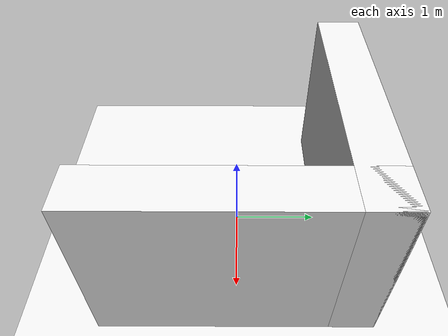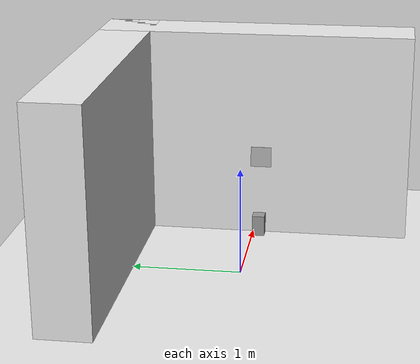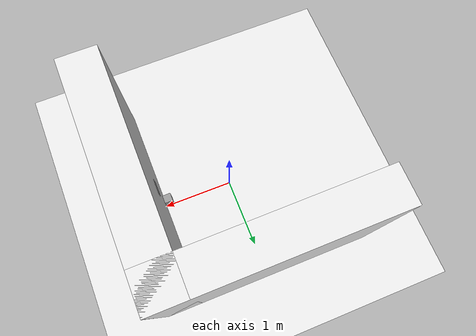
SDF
<?xml version="1.0" ?>
<sdf version='1.4'>
  <world name='calibration'>

    <light type="directional" name="sun">
      <cast_shadows>false</cast_shadows>
      <pose>0 1 10 0 0 0</pose>
      <diffuse>0.9 0.9 0.9 1</diffuse>
      <specular>0.9 0.9 0.9 1</specular>
      <attenuation>
        <range>1000</range>
        <constant>0.9</constant>
        <linear>0.01</linear>
        <quadratic>0.001</quadratic>
      </attenuation>
      <direction>0.5 0.5 -1.0</direction>
    </light>

    <light name='my_light' type='directional'>
      <pose>0.000000 0.000000 30.000000 0.000000 0.000000 0.000000</pose>
      <diffuse>0.900000 0.900000 0.900000 1.000000</diffuse>
      <specular>0.100000 0.100000 0.100000 1.000000</specular>
      <attenuation>
        <range>20.000000</range>
      </attenuation>
      <direction>0.000000 0.000000 -1.000000</direction>
      <cast_shadows>0</cast_shadows>
    </light>

    <model name="floor">
      <static>true</static>
      <link name="link">
      <pose>0 0 0 0 0 0</pose>
        <visual name="visual">
          <cast_shadows>false</cast_shadows>
          <geometry>
            <plane>
              <normal>0 0 1</normal>
              <size>15 15</size>
            </plane>
          </geometry>
          <material>
            <script>
              <uri>file://media/materials/scripts/gazebo.material</uri>
              <name>Gazebo/White</name>
            </script>
          </material>
        </visual>
        <collision name="collision">
          <geometry>
            <plane>
              <normal>0 0 1</normal>
              <size>15 15</size>
            </plane>
          </geometry>
          <surface>
            <friction>
              <ode>
                <mu>100</mu>
                <mu2>50</mu2>
              </ode>
            </friction>
          </surface>
        </collision>
      </link>
    </model>

    <model name='wall_1'>
      <static>true</static>
      <pose>1.25 0 1 0 0 0</pose>
      <link name='link'>
        <collision name='collision'>
          <geometry>
            <box>
              <size>0.5 3 2</size>
            </box>
          </geometry>
        </collision>
        <visual name='visual'>
          <geometry>
            <box>
              <size>0.5 3 2</size>
            </box>
          </geometry>
          <material>
            <script>
              <uri>file://media/materials/scripts/gazebo.material</uri>
              <name>Gazebo/White</name>
            </script>
          </material>
        </visual>
      </link>
    </model>

    <model name='wall_2'>
      <static>true</static>
      <pose>0 1.25 1 0 0 0</pose>
      <link name='link'>
        <collision name='collision'>
          <geometry>
            <box>
              <size>3 0.5 2</size>
            </box>
          </geometry>
        </collision>
        <visual name='visual'>
          <geometry>
            <box>
              <size>3 0.5 2</size>
            </box>
          </geometry>
          <material>
            <script>
              <uri>file://media/materials/scripts/gazebo.material</uri>
              <name>Gazebo/White</name>
            </script>
          </material>
        </visual>
      </link>
    </model>

    <model name='calibration_setup_checkerboard'>
      <static>true</static>
      <pose>1 0 0 0 0 0</pose>
      <link name='cb_9x6'>
        <pose>0.003 -0.1725 0.6815 0 0 0</pose>
        <collision name='collision'>
          <pose>-0.0025 0.1 0.1 0 0 0</pose>
          <geometry>
            <box>
              <size>0.005 0.2 0.2</size>
            </box>
          </geometry>
        </collision>
        <visual name='visual'>
          <pose>0 0 0 1.571 0 1.571</pose>
          <geometry>
            <mesh>
              <scale>0.0254 0.0254 0.0254</scale>
              <uri>/opt/ros/indigo/share/cob_gazebo_objects/Media/models/cb_9x6.dae</uri>
            </mesh>
          </geometry>
        </visual>
      </link>
      <link name='box'>
        <pose>-0.06 -0.06 0.1 0 0 0</pose>
        <collision name='collision'>
          <geometry>
            <box>
              <size>0.12 0.12 0.2</size>
            </box>
          </geometry>
        </collision>
        <visual name='visual'>
          <geometry>
            <box>
              <size>0.12 0.12 0.2</size>
            </box>
          </geometry>
          <material>
            <script>
              <uri>file://media/materials/scripts/gazebo.material</uri>
              <name>Gazebo/Grey</name>
            </script>
          </material>
        </visual>
      </link>
    </model>

    <gui>
      <camera name='user_camera'>
        <pose>-4 -4 6 0 0.7 0.7</pose>
      </camera>
    </gui>

  </world>
</sdf>
